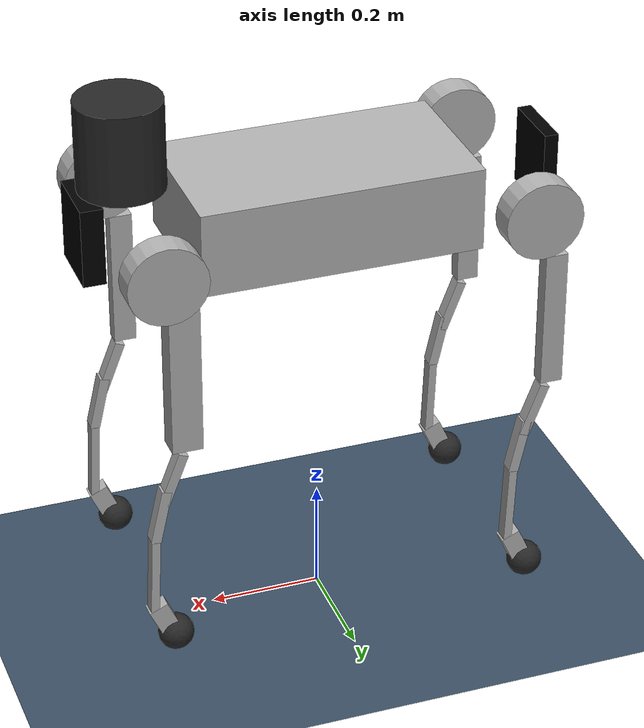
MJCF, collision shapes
<mujoco model="unitree_b2_scene">
  <include file="../model/robot.xml"/>
  <compiler meshdir="../model/assets"/>

  <statistic center="0 0 0.1" extent="1.0"/>
  <visual>
    <headlight diffuse="0.82 0.86 0.9" ambient="0.42 0.48 0.54" specular="0.15 0.15 0.18"/>
    <global azimuth="120" elevation="-20"/>
  </visual>
  <asset>
    <texture type="skybox" builtin="gradient" rgb1="0.3 0.5 0.7" rgb2="0 0 0" width="512" height="3072"/>
    <texture type="2d" name="groundplane" builtin="checker" mark="edge" rgb1="0.28 0.38 0.46" rgb2="0.16 0.23 0.30" markrgb="0.56 0.64 0.70" width="300" height="300"/>
    <material name="groundplane" texture="groundplane" texuniform="true" texrepeat="5 5" reflectance="0.2"/>
  </asset>
  <worldbody>
    <light pos="0 0 3" dir="0 0 -1" directional="true"/>
    <geom name="floor" size="0 0 0.05" type="plane" material="groundplane" friction="0.8 0.02 0.01"/>
  </worldbody>
</mujoco>

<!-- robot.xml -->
<mujoco model="b2">
  <compiler angle="radian" meshdir="assets" autolimits="true"/>
  <!-- timestep 不在此声明：运行时统一取 contract_v3.json control.physics_hz -->
  <option gravity="0 0 -9.81" integrator="implicitfast" cone="elliptic" impratio="100" />

  <default>
    <default class="b2">
      <geom type="mesh"/>
      <joint damping="1" armature="0.1"/>
      <default class="visual">
        <geom contype="0" conaffinity="0" group="2"/>
      </default>
      <default class="collision">
        <geom group="3" mass="0" density="0"/>
      </default>
      <site size="0.001" rgba="0.5 0.5 0.5 0.3" group="4"/>
    </default>
  </default>

  <asset>
    <mesh name="base_link" file="base_link.obj"/>
    <mesh name="logo_left" file="logo_left.obj"/>
    <mesh name="logo_right" file="logo_right.obj"/>
    <mesh name="unitree_ladar" file="unitree_ladar.obj"/>
    <mesh name="f_dc_link" file="f_dc_link.obj"/>
    <mesh name="r_dc_link" file="r_dc_link.obj"/>
    <mesh name="fake_imu_link" file="fake_head_Link.STL"/>
    <mesh name="fake_head_Link" file="fake_head_Link.STL"/>
    <mesh name="fake_tail_link" file="fake_head_Link.STL"/>
    <mesh name="FL_hip" file="FL_hip.obj"/>
    <mesh name="FL_thigh" file="FL_thigh.obj"/>
    <mesh name="FL_thigh_protect" file="FL_thigh_protect.obj"/>
    <mesh name="FL_calf" file="FL_calf.obj"/>
    <mesh name="FL_foot" file="FL_foot.obj"/>
    <mesh name="FR_hip" file="FR_hip.obj"/>
    <mesh name="FR_thigh" file="FR_thigh.obj"/>
    <mesh name="FR_thigh_protect" file="FR_thigh_protect.obj"/>
    <mesh name="FR_calf" file="FL_calf.obj"/>
    <mesh name="FR_foot" file="FL_foot.obj"/>
    <mesh name="RL_hip" file="RL_hip.obj"/>
    <mesh name="RL_thigh" file="FL_thigh.obj"/>
    <mesh name="RL_thigh_protect" file="FL_thigh_protect.obj"/>
    <mesh name="RL_calf" file="FL_calf.obj"/>
    <mesh name="RL_foot" file="FL_foot.obj"/>
    <mesh name="RR_hip" file="RR_hip.obj"/>
    <mesh name="RR_thigh" file="FR_thigh.obj"/>
    <mesh name="RR_thigh_protect" file="FR_thigh_protect.obj"/>
    <mesh name="RR_calf" file="FL_calf.obj"/>
    <mesh name="RR_foot" file="FL_foot.obj"/>
    <mesh name="f_oc_link" file="f_oc_link.obj"/>
    <mesh name="r_oc_link" file="r_oc_link.obj"/>
  </asset>
  <worldbody>
    <body name="base_link" pos="0 0 0.8" childclass="b2">
      <inertial pos="0.0212868 0.0045819 0.0106169" quat="0.00178111 0.675412 -0.000262894 0.737438" mass="40.8426" diaginertia="1.73786 1.66448 0.343734"/>
      <joint name="floating_base_joint" type="free" frictionloss="0"/>
      <geom type="mesh" contype="0" conaffinity="0" group="1" density="0" rgba="0.7 0.7 0.7 1" mesh="base_link"/>
      <geom size="0.25 0.14 0.075" type="box" rgba="0.7 0.7 0.7 1" class="collision"/>
      <geom type="mesh" contype="0" conaffinity="0" group="1" density="0" rgba="1 1 1 1" mesh="logo_left"/>
      <geom type="mesh" contype="0" conaffinity="0" group="1" density="0" rgba="1 1 1 1" mesh="logo_right"/>
      <geom pos="0.34218 0 0.17851" type="mesh" contype="0" conaffinity="0" group="1" density="0" rgba="0.15 0.15 0.15 1" mesh="unitree_ladar"/>
      <geom size="0.076 0.08" pos="0.34218 0 0.15851" type="cylinder" rgba="0.15 0.15 0.15 1" class="collision"/>
      <geom pos="0.841724 -4.57659e-06 0.130379" quat="0.00244632 3.13845e-06 0.999997 1.29099e-06" type="mesh" contype="0" conaffinity="0" group="1" density="0" rgba="0 0 0 1" mesh="f_dc_link"/>
      <geom pos="-0.378319 0.000200109 -0.379902" quat="-1.30076e-06 -0.708662 5.35065e-07 0.705548" type="mesh" contype="0" conaffinity="0" group="1" density="0" rgba="0 0 0 1" mesh="r_dc_link"/>
      <geom pos="0 -0.02341 0.04927" type="mesh" contype="0" conaffinity="0" group="1" density="0" rgba="0 0 0 1" mesh="fake_imu_link"/>
      <geom type="mesh" contype="0" conaffinity="0" group="1" density="0" rgba="0 0 0 1" mesh="fake_head_Link"/>
      <geom size="0.02 0.06 0.07" pos="0.41 0 0.005" type="box" rgba="0 0 0 1" class="collision"/>
      <geom type="mesh" contype="0" conaffinity="0" group="1" density="0" rgba="0 0 0 1" mesh="fake_tail_link"/>
      <geom size="0.0125 0.06 0.07" pos="-0.405 0 0.005" type="box" rgba="0 0 0 1" class="collision"/>
      <geom pos="0.84158 -0.0134347 -0.0134347" quat="-3.89602e-06 1.29867e-06 0.707107 -0.707107" type="mesh" contype="0" conaffinity="0" group="1" density="0" rgba="0 0 0 1" mesh="f_oc_link"/>
      <geom pos="-0.00451008 0.0252504 -0.0262476" quat="0.707107 -0.707107 -1.29867e-06 -1.29867e-06" type="mesh" contype="0" conaffinity="0" group="1" density="0" rgba="0 0 0 1" mesh="r_oc_link"/>
      <site name="imu" pos="0 -0.02341 0.04927"/>
      <body name="FL_hip" pos="0.3285 0.072 0">
        <inertial pos="-0.00829923 -0.00998502 0.000235465" quat="0.525168 0.518964 0.477213 0.476595" mass="2.5294" diaginertia="0.00485541 0.00370618 0.00277182"/>
        <joint name="FL_hip_joint" pos="0 0 0" axis="1 0 0" range="-0.87 0.87" armature="0.1" frictionloss="0"/>
        <geom type="mesh" contype="0" conaffinity="0" group="1" density="0" rgba="0.7 0.7 0.7 1" mesh="FL_hip"/>
        <geom size="0.07 0.025" pos="0 0.12 0" quat="0.707107 0.707107 0 0" type="cylinder" rgba="0.7 0.7 0.7 1" class="collision"/>
        <body name="FL_thigh" pos="0 0.11973 0">
          <inertial pos="-0.00418663 -0.0366068 -0.0432737" quat="0.884916 0.0880602 -0.00896728 0.457262" mass="7.4554" diaginertia="0.085057 0.0842843 0.0112538"/>
          <joint name="FL_thigh_joint" pos="0 0 0" axis="0 1 0" range="-0.94 4.69" armature="0.1" frictionloss="0"/>
          <geom type="mesh" contype="0" conaffinity="0" group="1" density="0" rgba="0.7 0.7 0.7 1" mesh="FL_thigh"/>
          <geom size="0.16 0.02225 0.027" pos="-0.025 0 -0.16" quat="0.707388 0 0.706825 0" type="box" rgba="0.7 0.7 0.7 1" class="collision"/>
          <geom type="mesh" contype="0" conaffinity="0" group="1" density="0" rgba="0.65 0.68 0.65 1" mesh="FL_thigh_protect"/>
          <body name="FL_calf" pos="0 -8.6984e-05 -0.35">
            <inertial pos="0.0096848 1.25758e-05 -0.158987" quat="0.70753 -0.00625821 -0.00634277 0.706627" mass="0.679123" diaginertia="0.0162494 0.0161173 0.000398115"/>
            <joint name="FL_calf_joint" pos="0 0 0" axis="0 1 0" range="-2.82 -0.43" armature="0.1" frictionloss="0"/>
            <geom type="mesh" contype="0" conaffinity="0" group="1" density="0" rgba="0.7 0.7 0.7 1" mesh="FL_calf"/>
            <geom size="0.05 0.01225 0.009" pos="-0.002 0 -0.03" quat="0.825336 0 0.564642 0" type="box" rgba="0.7 0.7 0.7 1" class="collision"/>
            <geom size="0.05 0.01225 0.009" pos="0.022 0 -0.1" quat="0.780707 0 0.624897 0" type="box" rgba="0.7 0.7 0.7 1" class="collision"/>
            <geom size="0.075 0.01225 0.0075" pos="0.036 0 -0.225" quat="0.721382 0 0.692537 0" type="box" rgba="0.7 0.7 0.7 1" class="collision"/>
            <geom size="0.025 0.014 0.0175" pos="0.023 0 -0.31" quat="0.540302 0 0.841471 0" type="box" rgba="0.7 0.7 0.7 1" class="collision"/>
            <geom pos="0 8.6986e-05 0" type="mesh" contype="0" conaffinity="0" group="1" density="0" rgba="0.15 0.15 0.15 1" mesh="FL_foot" friction="0.4 0.005 0.0001"/>
            <geom name="FL_foot_collision" size="0.032" pos="0 8.6986e-05 -0.35" quat="0.707388 0.706825 0 0" type="sphere" rgba="0.15 0.15 0.15 1" class="collision" friction="0.4 0.005 0.0001"/>
            <site name="FL" pos="0 8.6986e-05 -0.35" type="sphere" size="0.01" group="5"/>
          </body>
        </body>
      </body>
      <body name="FR_hip" pos="0.3285 -0.072 0">
        <inertial pos="-0.00829923 0.00998502 0.000235465" quat="0.476595 0.477213 0.518964 0.525168" mass="2.5294" diaginertia="0.00485541 0.00370618 0.00277182"/>
        <joint name="FR_hip_joint" pos="0 0 0" axis="1 0 0" range="-0.87 0.87" armature="0.1" frictionloss="0"/>
        <geom type="mesh" contype="0" conaffinity="0" group="1" density="0" rgba="0.7 0.7 0.7 1" mesh="FR_hip"/>
        <geom size="0.07 0.025" pos="0 -0.12 0" quat="0.707107 0.707107 0 0" type="cylinder" rgba="0.7 0.7 0.7 1" class="collision"/>
        <body name="FR_thigh" pos="0 -0.11973 0">
          <inertial pos="-0.00418663 0.0366068 -0.0432737" quat="0.457262 -0.00896728 0.0880602 0.884916" mass="7.4554" diaginertia="0.085057 0.0842843 0.0112538"/>
          <joint name="FR_thigh_joint" pos="0 0 0" axis="0 1 0" range="-0.94 4.69" armature="0.1" frictionloss="0"/>
          <geom type="mesh" contype="0" conaffinity="0" group="1" density="0" rgba="0.7 0.7 0.7 1" mesh="FR_thigh"/>
          <geom size="0.125 0.014 0.02" pos="-0.03 0 -0.2" quat="0.707388 0 0.706825 0" type="box" rgba="0.7 0.7 0.7 1" class="collision"/>
          <geom type="mesh" contype="0" conaffinity="0" group="1" density="0" rgba="0.65 0.68 0.65 1" mesh="FR_thigh_protect"/>
          <body name="FR_calf" pos="0 8.6986e-05 -0.35">
            <inertial pos="0.0096848 0 -0.158987" quat="0.707079 -0.00630052 -0.00630052 0.707079" mass="0.679123" diaginertia="0.0162494 0.0161173 0.000398115"/>
            <joint name="FR_calf_joint" pos="0 0 0" axis="0 1 0" range="-2.82 -0.43" armature="0.1" frictionloss="0"/>
            <geom type="mesh" contype="0" conaffinity="0" group="1" density="0" rgba="0.7 0.7 0.7 1" mesh="FR_calf"/>
            <geom size="0.05 0.01225 0.009" pos="-0.002 0 -0.03" quat="0.825336 0 0.564642 0" type="box" rgba="0.7 0.7 0.7 1" class="collision"/>
            <geom size="0.05 0.01225 0.009" pos="0.022 0 -0.1" quat="0.780707 0 0.624897 0" type="box" rgba="0.7 0.7 0.7 1" class="collision"/>
            <geom size="0.075 0.01225 0.0075" pos="0.036 0 -0.225" quat="0.721382 0 0.692537 0" type="box" rgba="0.7 0.7 0.7 1" class="collision"/>
            <geom size="0.025 0.014 0.0175" pos="0.023 0 -0.31" quat="0.540302 0 0.841471 0" type="box" rgba="0.7 0.7 0.7 1" class="collision"/>
            <geom type="mesh" contype="0" conaffinity="0" group="1" density="0" rgba="0.15 0.15 0.15 1" mesh="FR_foot" friction="0.4 0.005 0.0001"/>
            <geom name="FR_foot_collision" size="0.032" pos="0 8.6986e-05 -0.35" quat="0.707388 0.706825 0 0" type="sphere" rgba="0.15 0.15 0.15 1" class="collision" friction="0.4 0.005 0.0001"/>
            <site name="FR" pos="0 8.6986e-05 -0.35" type="sphere" size="0.01" group="5"/>
          </body>
        </body>
      </body>
      <body name="RL_hip" pos="-0.3285 0.072 0">
        <inertial pos="0.00829923 -0.00998502 0.000235465" quat="0.477213 0.476595 0.525168 0.518964" mass="2.5294" diaginertia="0.00485541 0.00370618 0.00277182"/>
        <joint name="RL_hip_joint" pos="0 0 0" axis="1 0 0" range="-0.87 0.87" armature="0.1" frictionloss="0"/>
        <geom type="mesh" contype="0" conaffinity="0" group="1" density="0" rgba="0.7 0.7 0.7 1" mesh="RL_hip"/>
        <geom size="0.07 0.025" pos="0 0.12 0" quat="0.707107 0.707107 0 0" type="cylinder" rgba="0.7 0.7 0.7 1" class="collision"/>
        <body name="RL_thigh" pos="0 0.11973 0">
          <inertial pos="-0.00418663 -0.0366068 -0.0432737" quat="0.884916 0.0880602 -0.00896728 0.457262" mass="7.4554" diaginertia="0.085057 0.0842843 0.0112538"/>
          <joint name="RL_thigh_joint" pos="0 0 0" axis="0 1 0" range="-0.94 4.69" armature="0.1" frictionloss="0"/>
          <geom type="mesh" contype="0" conaffinity="0" group="1" density="0" rgba="0.7 0.7 0.7 1" mesh="RL_thigh"/>
          <geom size="0.125 0.014 0.02" pos="-0.03 0 -0.2" quat="0.707388 0 0.706825 0" type="box" rgba="0.7 0.7 0.7 1" class="collision"/>
          <geom type="mesh" contype="0" conaffinity="0" group="1" density="0" rgba="0.65 0.68 0.65 1" mesh="RL_thigh_protect"/>
          <body name="RL_calf" pos="0 -8.6984e-05 -0.35">
            <inertial pos="0.0096848 1.25758e-05 -0.158987" quat="0.70753 -0.00625821 -0.00634277 0.706627" mass="0.679123" diaginertia="0.0162494 0.0161173 0.000398115"/>
            <joint name="RL_calf_joint" pos="0 0 0" axis="0 1 0" range="-2.82 -0.43" armature="0.1" frictionloss="0"/>
            <geom type="mesh" contype="0" conaffinity="0" group="1" density="0" rgba="0.7 0.7 0.7 1" mesh="RL_calf"/>
            <geom size="0.05 0.01225 0.009" pos="-0.002 0 -0.03" quat="0.825336 0 0.564642 0" type="box" rgba="0.7 0.7 0.7 1" class="collision"/>
            <geom size="0.05 0.01225 0.009" pos="0.022 0 -0.1" quat="0.780707 0 0.624897 0" type="box" rgba="0.7 0.7 0.7 1" class="collision"/>
            <geom size="0.075 0.01225 0.0075" pos="0.036 0 -0.225" quat="0.721382 0 0.692537 0" type="box" rgba="0.7 0.7 0.7 1" class="collision"/>
            <geom size="0.025 0.014 0.0175" pos="0.023 0 -0.31" quat="0.540302 0 0.841471 0" type="box" rgba="0.7 0.7 0.7 1" class="collision"/>
            <geom pos="0 8.6986e-05 0" type="mesh" contype="0" conaffinity="0" group="1" density="0" rgba="0.15 0.15 0.15 1" mesh="RL_foot" friction="0.4 0.005 0.0001"/>
            <geom name="RL_foot_collision" size="0.032" pos="0 8.6986e-05 -0.35" quat="0.707388 0.706825 0 0" type="sphere" rgba="0.15 0.15 0.15 1" class="collision" friction="0.4 0.005 0.0001"/>
            <site name="RL" pos="0 8.6986e-05 -0.35" type="sphere" size="0.01" group="5"/>
          </body>
        </body>
      </body>
      <body name="RR_hip" pos="-0.3285 -0.072 0">
        <inertial pos="0.00829923 -0.00825992 0.000235465" quat="0.524846 0.53164 0.469132 0.470967" mass="2.5294" diaginertia="0.0048658 0.00378576 0.00284106"/>
        <joint name="RR_hip_joint" pos="0 0 0" axis="1 0 0" range="-0.87 0.87" armature="0.1" frictionloss="0"/>
        <geom type="mesh" contype="0" conaffinity="0" group="1" density="0" rgba="0.7 0.7 0.7 1" mesh="RR_hip"/>
        <geom size="0.07 0.025" pos="0 -0.12 0" quat="0.707107 0.707107 0 0" type="cylinder" rgba="0.7 0.7 0.7 1" class="collision"/>
        <body name="RR_thigh" pos="0 -0.11973 0">
          <inertial pos="-0.00418663 0.0366068 -0.0432737" quat="0.457262 -0.00896728 0.0880602 0.884916" mass="7.4554" diaginertia="0.085057 0.0842843 0.0112538"/>
          <joint name="RR_thigh_joint" pos="0 0 0" axis="0 1 0" range="-0.94 4.69" armature="0.1" frictionloss="0"/>
          <geom type="mesh" contype="0" conaffinity="0" group="1" density="0" rgba="0.7 0.7 0.7 1" mesh="RR_thigh"/>
          <geom size="0.125 0.014 0.02" pos="-0.03 0 -0.2" quat="0.707388 0 0.706825 0" type="box" rgba="0.7 0.7 0.7 1" class="collision"/>
          <geom type="mesh" contype="0" conaffinity="0" group="1" density="0" rgba="0.65 0.68 0.65 1" mesh="RR_thigh_protect"/>
          <body name="RR_calf" pos="0 8.6986e-05 -0.35">
            <inertial pos="0.0096848 -1.25756e-05 -0.158987" quat="0.706627 -0.00634277 -0.00625821 0.70753" mass="0.679123" diaginertia="0.0162494 0.0161173 0.000398115"/>
            <joint name="RR_calf_joint" pos="0 0 0" axis="0 1 0" range="-2.82 -0.43" armature="0.1" frictionloss="0"/>
            <geom type="mesh" contype="0" conaffinity="0" group="1" density="0" rgba="0.7 0.7 0.7 1" mesh="RR_calf"/>
            <geom size="0.05 0.01225 0.009" pos="-0.002 0 -0.03" quat="0.825336 0 0.564642 0" type="box" rgba="0.7 0.7 0.7 1" class="collision"/>
            <geom size="0.05 0.01225 0.009" pos="0.022 0 -0.1" quat="0.780707 0 0.624897 0" type="box" rgba="0.7 0.7 0.7 1" class="collision"/>
            <geom size="0.075 0.01225 0.0075" pos="0.036 0 -0.225" quat="0.721382 0 0.692537 0" type="box" rgba="0.7 0.7 0.7 1" class="collision"/>
            <geom size="0.025 0.014 0.0175" pos="0.023 0 -0.31" quat="0.540302 0 0.841471 0" type="box" rgba="0.7 0.7 0.7 1" class="collision"/>
            <geom pos="0 -8.6984e-05 0" type="mesh" contype="0" conaffinity="0" group="1" density="0" rgba="0.15 0.15 0.15 1" mesh="RR_foot" friction="0.4 0.005 0.0001"/>
            <geom name="RR_foot_collision" size="0.032" pos="0 8.6986e-05 -0.35" quat="0.707388 0.706825 0 0" type="sphere" rgba="0.15 0.15 0.15 1" class="collision" friction="0.4 0.005 0.0001"/>
            <site name="RR" pos="0 8.6986e-05 -0.35" type="sphere" size="0.01" group="5"/>
          </body>
        </body>
      </body>
    </body>
  </worldbody>

  <actuator>
        <position name="FR_hip_joint" joint="FR_hip_joint" kp="160" kv="5" forcerange="-200 200" forcelimited="true" />
        <position name="FR_thigh_joint" joint="FR_thigh_joint" kp="160" kv="5" forcerange="-200 200" forcelimited="true" />
        <position name="FR_calf_joint" joint="FR_calf_joint" kp="160" kv="5" forcerange="-320 320" forcelimited="true" />
        <position name="FL_hip_joint" joint="FL_hip_joint" kp="160" kv="5" forcerange="-200 200" forcelimited="true" />
        <position name="FL_thigh_joint" joint="FL_thigh_joint" kp="160" kv="5" forcerange="-200 200" forcelimited="true" />
        <position name="FL_calf_joint" joint="FL_calf_joint" kp="160" kv="5" forcerange="-320 320" forcelimited="true" />
        <position name="RR_hip_joint" joint="RR_hip_joint" kp="160" kv="5" forcerange="-200 200" forcelimited="true" />
        <position name="RR_thigh_joint" joint="RR_thigh_joint" kp="160" kv="5" forcerange="-200 200" forcelimited="true" />
        <position name="RR_calf_joint" joint="RR_calf_joint" kp="160" kv="5" forcerange="-320 320" forcelimited="true" />
        <position name="RL_hip_joint" joint="RL_hip_joint" kp="160" kv="5" forcerange="-200 200" forcelimited="true" />
        <position name="RL_thigh_joint" joint="RL_thigh_joint" kp="160" kv="5" forcerange="-200 200" forcelimited="true" />
        <position name="RL_calf_joint" joint="RL_calf_joint" kp="160" kv="5" forcerange="-320 320" forcelimited="true" />
  </actuator>

  <sensor>
    <velocimeter name="imu_lin_vel" site="imu"/>
    <gyro name="imu_ang_vel" site="imu"/>
    <jointpos name="FR_hip_pos" joint="FR_hip_joint" />
    <jointpos name="FR_thigh_pos" joint="FR_thigh_joint" />
    <jointpos name="FR_calf_pos" joint="FR_calf_joint" />
    <jointpos name="FL_hip_pos" joint="FL_hip_joint" />
    <jointpos name="FL_thigh_pos" joint="FL_thigh_joint" />
    <jointpos name="FL_calf_pos" joint="FL_calf_joint" />
    <jointpos name="RR_hip_pos" joint="RR_hip_joint" />
    <jointpos name="RR_thigh_pos" joint="RR_thigh_joint" />
    <jointpos name="RR_calf_pos" joint="RR_calf_joint" />
    <jointpos name="RL_hip_pos" joint="RL_hip_joint" />
    <jointpos name="RL_thigh_pos" joint="RL_thigh_joint" />
    <jointpos name="RL_calf_pos" joint="RL_calf_joint" />

    <jointvel name="FR_hip_vel" joint="FR_hip_joint" />
    <jointvel name="FR_thigh_vel" joint="FR_thigh_joint" />
    <jointvel name="FR_calf_vel" joint="FR_calf_joint" />
    <jointvel name="FL_hip_vel" joint="FL_hip_joint" />
    <jointvel name="FL_thigh_vel" joint="FL_thigh_joint" />
    <jointvel name="FL_calf_vel" joint="FL_calf_joint" />
    <jointvel name="RR_hip_vel" joint="RR_hip_joint" />
    <jointvel name="RR_thigh_vel" joint="RR_thigh_joint" />
    <jointvel name="RR_calf_vel" joint="RR_calf_joint" />
    <jointvel name="RL_hip_vel" joint="RL_hip_joint" />
    <jointvel name="RL_thigh_vel" joint="RL_thigh_joint" />
    <jointvel name="RL_calf_vel" joint="RL_calf_joint" />

    <jointactuatorfrc name="FR_hip_torque" joint="FR_hip_joint" noise="0.01" />
    <jointactuatorfrc name="FR_thigh_torque" joint="FR_thigh_joint" noise="0.01" />
    <jointactuatorfrc name="FR_calf_torque" joint="FR_calf_joint" noise="0.01" />
    <jointactuatorfrc name="FL_hip_torque" joint="FL_hip_joint" noise="0.01" />
    <jointactuatorfrc name="FL_thigh_torque" joint="FL_thigh_joint" noise="0.01" />
    <jointactuatorfrc name="FL_calf_torque" joint="FL_calf_joint" noise="0.01" />
    <jointactuatorfrc name="RR_hip_torque" joint="RR_hip_joint" noise="0.01" />
    <jointactuatorfrc name="RR_thigh_torque" joint="RR_thigh_joint" noise="0.01" />
    <jointactuatorfrc name="RR_calf_torque" joint="RR_calf_joint" noise="0.01" />
    <jointactuatorfrc name="RL_hip_torque" joint="RL_hip_joint" noise="0.01" />
    <jointactuatorfrc name="RL_thigh_torque" joint="RL_thigh_joint" noise="0.01" />
    <jointactuatorfrc name="RL_calf_torque" joint="RL_calf_joint" noise="0.01" />

    <framequat name="imu_quat" objtype="site" objname="imu" />
    <gyro name="imu_gyro" site="imu" />
    <accelerometer name="imu_acc" site="imu" />

    <framepos name="frame_pos" objtype="site" objname="imu" />
    <framelinvel name="frame_vel" objtype="site" objname="imu" />
  </sensor>

  <keyframe>
    <key name="home" qpos="0 0 0.5 1 0 0 0 0 1.28 -2.84 0 1.28 -2.84 0 1.28 -2.84 0 1.28 -2.84"
      ctrl="0 1.28 -2.84 0 1.28 -2.84 0 1.28 -2.84 0 1.28 -2.84"/>
  </keyframe>

</mujoco>
